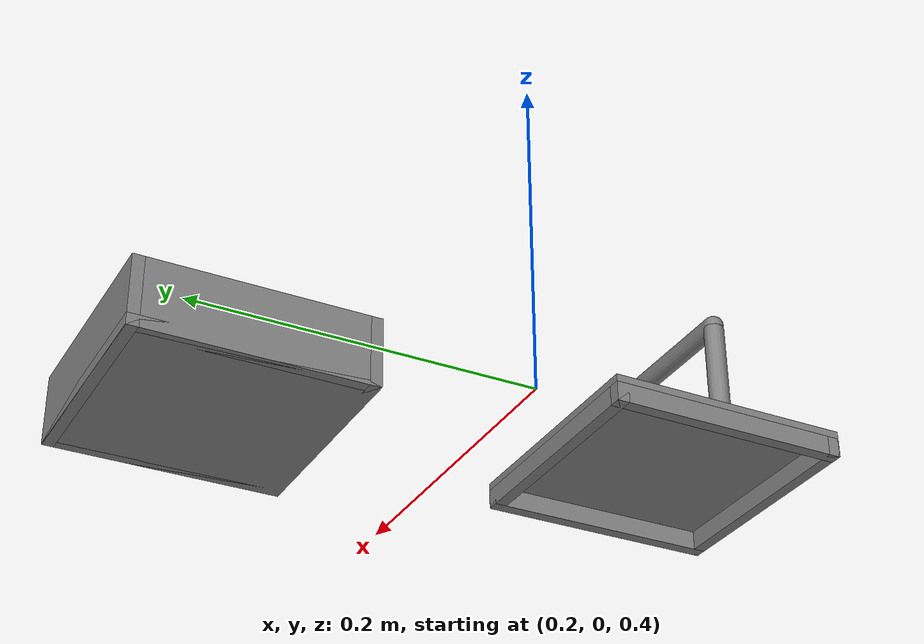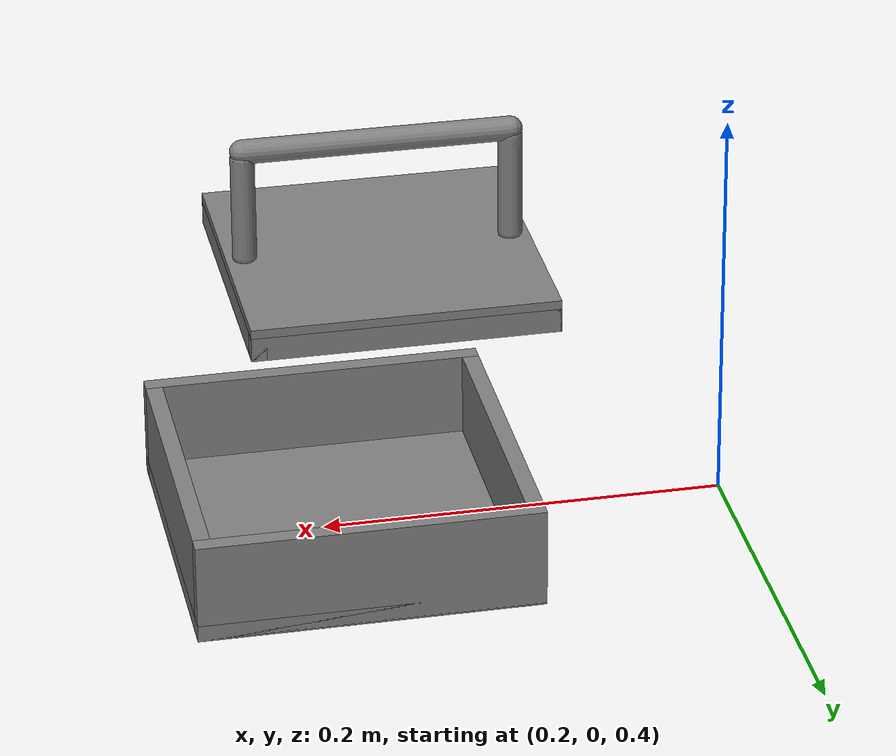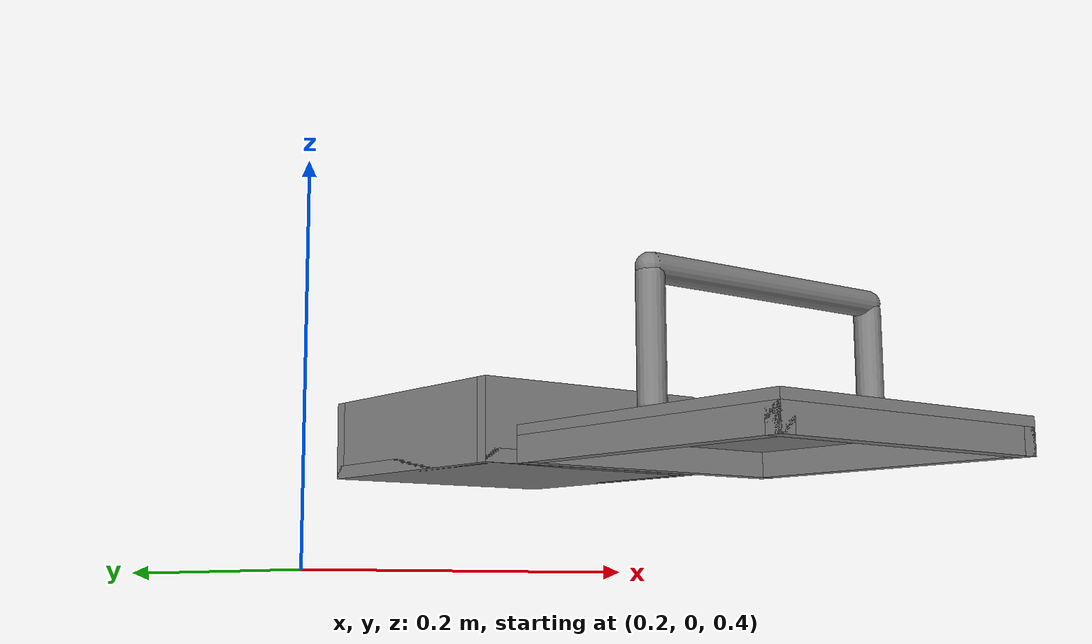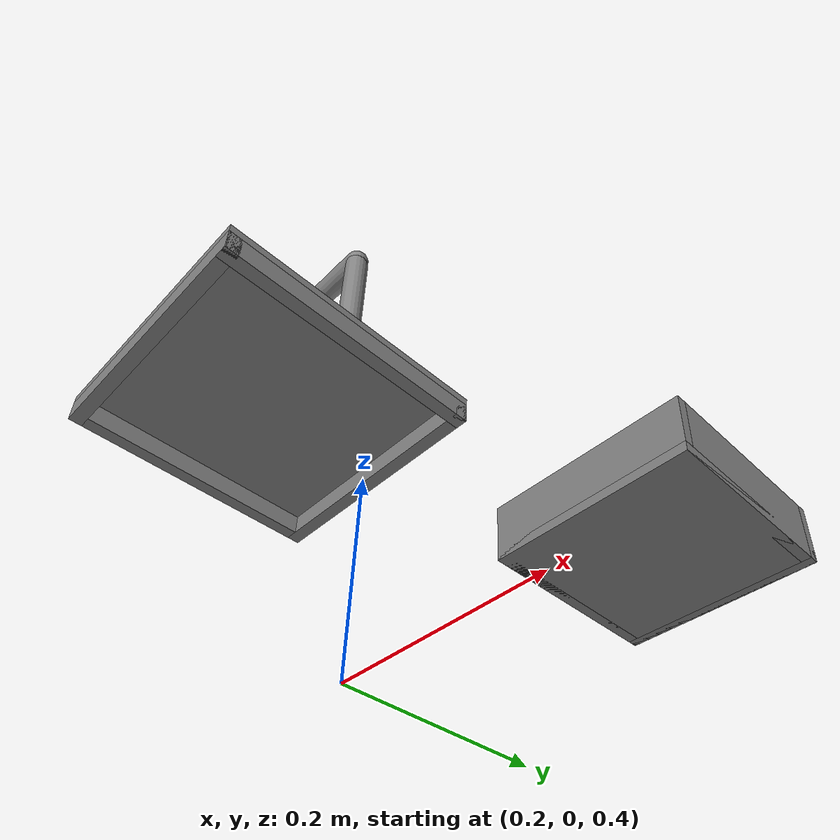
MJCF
<?xml version="1.0"?>
<mujoco model="metaworld_box">
  <compiler angle="radian" meshdir="meshes" autolimits="true"/>

  <asset>
    <!-- Box meshes -->
    <mesh name="box_bin" file="objects/meshes/bin.stl" scale="0.8 0.8 0.8"/>
    <mesh name="box_top" file="objects/metaworld_box/meshes/boxtop.stl" scale="0.8 0.8 0.8"/>
    <mesh name="box_handle" file="objects/metaworld_box/meshes/boxhandle.stl" scale="0.8 0.8 0.8"/>
  </asset>

  <default>
    <default class="box">
      <geom type="mesh" contype="1" conaffinity="1" condim="3" friction="0.5 0.005 0.0001"/>
    </default>
  </default>

  <worldbody>
    <!-- Box base (free movable) -->
    <body name="box_base" pos="0.41 0.11 0.46">
      <freejoint name="box_base_joint"/>
      <inertial mass="0.5" pos="0 0 0" diaginertia="0.01 0.01 0.01"/>

      <!-- Box container collision (simplified box walls) -->
      <geom name="box_bottom" type="box" size="0.08 0.08 0.004" pos="0 0 0.004" class="box"/>
      <geom name="box_front" type="box" size="0.08 0.004 0.024" pos="0 -0.076 0.024" class="box"/>
      <geom name="box_back" type="box" size="0.08 0.004 0.024" pos="0 0.076 0.024" class="box"/>
      <geom name="box_left" type="box" size="0.004 0.072 0.024" pos="-0.076 0 0.024" class="box"/>
      <geom name="box_right" type="box" size="0.004 0.072 0.024" pos="0.076 0 0.024" class="box"/>
    </body>

    <!-- Box top (graspable with free joint) -->
    <body name="box_top" pos="0.34 -0.17 0.46" euler="0 0 1.5708">
      <freejoint name="box_top_joint"/>
      <inertial mass="0.1" pos="0 0 0" diaginertia="0.001 0.001 0.001"/>

      <!-- Top collision (完整环形把手) -->
      <!-- 盖子主体 -->
      <geom name="box_top_col1" type="box" size="0.08 0.08 0.0024" pos="0 0 0.0024" class="box"/>
      <!-- 左边 -->
      <geom name="box_top_col2" type="box" size="0.004 0.08 0.0064" pos="-0.076 0 -0.0064" class="box"/>
      <!-- 右边 -->
      <geom name="box_top_col3" type="box" size="0.004 0.08 0.0064" pos="0.076 0 -0.0064" class="box"/>
      <!-- 前边 -->
      <geom name="box_top_col4" type="box" size="0.08 0.004 0.0064" pos="0 -0.076 -0.0064" class="box"/>
      <!-- 后边 -->
      <geom name="box_top_col5" type="box" size="0.08 0.004 0.0064" pos="0 0.076 -0.0064" class="box"/>
      <!-- 把手横向杆 -->
      <geom name="handle_col1" type="capsule" size="0.0064 0.07" euler="1.57 0 0" pos="0 0 0.0656" class="box"/>
      <!-- 把手左竖杆 -->
      <geom name="handle_col2" type="capsule" size="0.0064 0.028" pos="0 -0.07 0.0344" class="box"/>
      <!-- 把手右竖杆 -->
      <geom name="handle_col3" type="capsule" size="0.0064 0.028" pos="0 0.07 0.0344" class="box"/>
    </body>
  </worldbody>
</mujoco>
